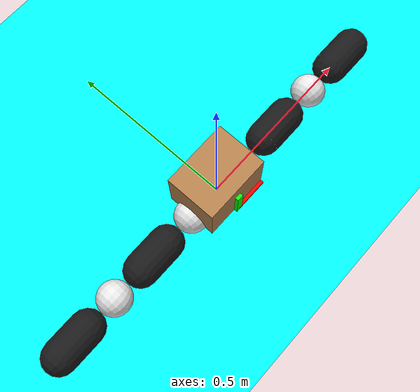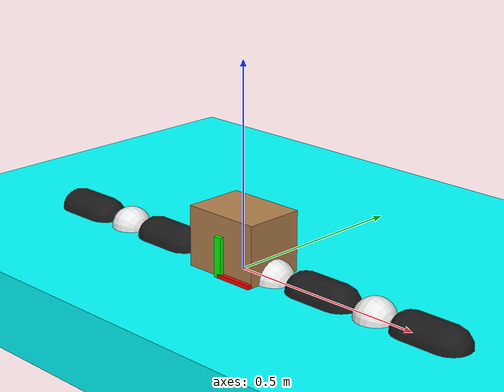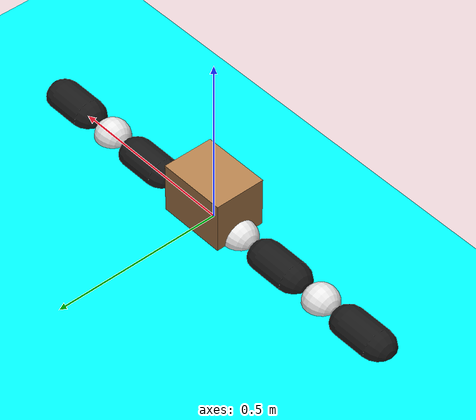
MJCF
<mujoco model="floating_hand">
<!-- Copyright (c) 2023 Robotics and AI Institute LLC dba RAI Institute. All rights reserved. -->
  <compiler angle="radian" autolimits="true"/>

  <option gravity="0 0 -9.81" timestep="0.01" />

  <asset>
    <texture name="blue_grid" type="2d" builtin="checker" rgb1=".02 .14 .44" rgb2=".27 .55 1" width="300" height="300" mark="edge" markrgb="1 1 1"/>
    <material name="blue_grid" texture="blue_grid" texrepeat="1 1" texuniform="true" reflectance=".2"/>
    <material name="object" rgba=".7 .5 .3 1"/>
    <material name="white" rgba="0.9 .9 .9 1"/>
    <material name="black" rgba="0.1 .1 .1 1"/>
  </asset>

  <default>
    <material specular="0.5" shininess="0.95"/>
    <default class="wrist">
      <joint damping="50" range="-2 2" type="slide"/>
      <position kp="35" ctrlrange="-2 2" forcerange="-1000 1000"/>
    </default>
    <default class="finger">
      <joint axis="0 -1 0" damping="2" />
      <position kp="35" forcerange="-1000 1000"/>
      <default class="left_shoulder">
        <joint range="-1.57 0"/>
        <position ctrlrange="-1.57 0"/>
      </default>
      <default class="right_shoulder">
        <joint range="0 1.57"/>
        <position ctrlrange="0 1.57"/>
      </default>
      <default class="left_elbow">
        <joint range="-2.4 0"/>
        <position ctrlrange="-2.4 0"/>
      </default>
      <default class="right_elbow">
        <joint range="0 2.4"/>
        <position ctrlrange="0 2.4"/>
      </default>
    </default>
    <default class="collision">
      <geom priority="4" friction="0.50" solimp="0.01" solref="0.01" group="0"/>
    </default>
  </default>

  <worldbody>
    <body>
      <geom mass="0" name="floor" pos="0 0 -0.10" condim="3" size="10.0 10.0 0.10" rgba="0 1 1 1" type="box" material="blue_grid"/>
    </body>

    <body name="box" pos="0.0 0.0 0.00">
      <geom mass="0.4" size="0.10 0.075 0.15" type="box" material="object"/>
      <geom mass="0" size="0.05 0.01 0.01" pos="0.05 -0.075 0" type="box" rgba="1 0 0 1"/>
      <geom mass="0" size="0.01 0.01 0.05" pos="0.0 -0.075 0.05" type="box" rgba="0 1 0 1"/>
      <site pos="0 0 0" name="site_box"/>
      <joint axis="1 0 0" name="slide_object_x" type="slide" limited="true" range="-5 5"/>
      <joint axis="0 0 1" name="slide_object_z" type="slide" limited="true" range="-5 5"/>
      <joint axis="0 -1 0" name="joint_object_y" type="hinge"/>
    </body>

    <body name="robot_base" pos="0 0 0" gravcomp="1.0">
      <geom mass="1.0" pos="0.1 0 0" quat="0.5 0 0.5 0" size="0.05" class="collision" type="sphere" material="white"/>
      <geom mass="1.0" pos="-0.1 0 0" quat="0.5 0 0.5 0" size="0.05" class="collision" type="sphere" material="white"/>
      <joint axis="-1 0 0" name="slide_x" class="wrist"/>
      <joint axis="0 0 1" name="slide_z" class="wrist"/>
      <body name="robot_left_shoulder" pos="0.10 0 0" gravcomp="1.0">
        <geom mass="0.5" pos="0.15 0 0" quat="0.5 0 0.5 0" size="0.05 0.05" type="capsule" material="black"/>
        <site pos="0.15 0 0" name="site_left_shoulder"/>
        <geom mass="0.5" pos="0.30 0 0" quat="0.5 0 0.5 0" size="0.05" type="sphere" material="white"/>
        <joint name="joint_left_shoulder" class="left_shoulder"/>
        <body name="robot_left_elbow" pos="0.30 0 0" gravcomp="1.0">
          <geom mass="0.5" pos="0.15 0 0" quat="0.5 0 0.5 0" size="0.05 0.05" type="capsule" material="black"/>
          <site pos="0.15 0 0" name="site_left_elbow"/>
          <joint name="joint_left_elbow" class="left_elbow"/>
        </body>
      </body>
      <body name="robot_right_shoulder" pos="-0.10 0 0" gravcomp="1.0">
        <geom mass="0.5" pos="-0.15 0 0" quat="0.5 0 0.5 0" size="0.05 0.05" type="capsule" material="black"/>
        <site pos="-0.15 0 0" name="site_right_shoulder"/>
        <geom mass="0.5" pos="-0.30 0 0" quat="0.5 0 0.5 0" size="0.05" type="sphere" material="white"/>
        <joint name="joint_right_shoulder" class="right_shoulder"/>
        <body name="robot_right_elbow" pos="-0.30 0 0" gravcomp="1.0">
          <geom mass="0.5" pos="-0.15 0 0" quat="0.5 0 0.5 0" size="0.05 0.05" type="capsule" material="black"/>
          <site pos="-0.15 0 0" name="site_right_elbow"/>
          <joint name="joint_right_elbow" class="right_elbow"/>
        </body>
      </body>
    </body>
  </worldbody>

  <keyframe>
    <!-- [object_xytheta arm_joint_angles] -->
    <key name="home" qpos="0 0 0  0 0 0 0 0 0" />
  </keyframe>

  <sensor>
    <framepos name="sensor_left_thigh" objtype="site" objname="site_left_shoulder" reftype="site" refname="site_box"/>
    <framepos name="sensor_left_calf" objtype="site" objname="site_left_elbow" reftype="site" refname="site_box"/>
    <framepos name="sensor_right_thigh" objtype="site" objname="site_right_shoulder" reftype="site" refname="site_box"/>
    <framepos name="sensor_right_calf" objtype="site" objname="site_right_elbow" reftype="site" refname="site_box"/>
  </sensor>

  <actuator>
    <position name="actuator_base_x" joint="slide_x" class="wrist"/>
    <position name="actuator_base_z" joint="slide_z" class="wrist"/>
    <position name="actuator_left_thigh" joint="joint_left_shoulder" class="left_shoulder"/>
    <position name="actuator_left_calf" joint="joint_left_elbow" class="left_elbow"/>
    <position name="actuator_right_thigh" joint="joint_right_shoulder" class="right_shoulder"/>
    <position name="actuator_right_calf" joint="joint_right_elbow" class="right_elbow"/>
  </actuator>
</mujoco>
